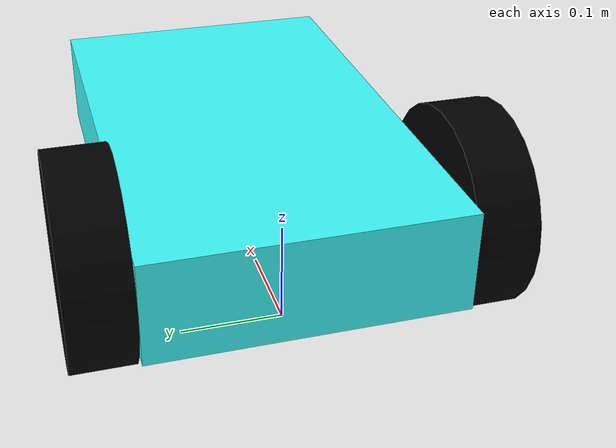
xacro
<?xml version="1.0" ?>

<robot xmlns:xacro="http://www.ros.org/wiki/xacro" name="differential">

<!-- Include -->
<xacro:include filename="$(find my_diff_robot)/urdf/robot_parameters.xacro" />
<xacro:include filename="$(find my_diff_robot)/urdf/my_diff_macros.xacro" />
<!-- END - Include -->

<!-- RViz Material Definition-->

<!-- Chasis -->
<material name="cyan">
  <color rgba="0.25 1.0 1.0 1.0"/>
</material>

<!-- Wheels -->
<material name="black">
  <color rgba="0.0 0.0 0.0 1.0"/>
</material>

<!-- Sphere -->
<material name="grey">
  <color rgba="0.47 0.47 0.47 1.0"/>
</material>

<!-- Gazebo Material Definition-->

<!-- Chasis -->
<gazebo reference="chasis">
  <material>Gazebo/BlueGlow</material>
</gazebo>

<!-- Wheels -->
<gazebo reference="left_wheel">
  <material>Gazebo/FlatBlack</material>
</gazebo>

<gazebo reference="right_wheel">
  <material>Gazebo/FlatBlack</material>
</gazebo>

<!-- Sphere -->
<gazebo reference="sphere_wheel">
  <material>Gazebo/Grey</material>
</gazebo>

<!-- * * * Robot Description * * * -->

<!-- Reference Frame -->
<link name="base_footprint">
</link>

<!-- Footprint to chasis joint -->
<xacro:fixed_joint name="chasis_joint"
origin_xyz="0 0 ${ground_clearance+(base_height/2)}"
origin_rpy="0 0 0"
parent= "base_footprint"
child= "chasis"
/>

<!-- Chasis link -->
<xacro:rectangular_link name="chasis"
origin_xyz= "${(base_length/2)-wheel_radius} 0 0"
origin_rpy= "0 0 0"
length= "${base_length}"
width= "${base_width}"
height= "${base_height}"
material= "cyan"
/>

<!-- Chasis to left wheel joint -->
<xacro:wheel_joint name="left_wheel_joint"
child = "left_wheel"
parent = "chasis"
origin_xyz= "0 ${wheel_distance/2} 0"
origin_rpy= "${-1*pi/2} 0 0"
limit_e = "10"
limit_v = "10"
/>

<!-- Left wheel link -->
<xacro:wheel_link name="left_wheel"
radius= "${wheel_radius}"
width= "${(wheel_distance-base_width)}"
origin_xyz= "0 0 0"
origin_rpy= "0 0 0"
material = "black"
/>

<!-- Chasis to right wheel joint -->
<xacro:wheel_joint name="right_wheel_joint"
child = "right_wheel"
parent = "chasis"
origin_xyz= "0 ${-1*wheel_distance/2} 0"
origin_rpy= "${-1*pi/2} 0 0"
limit_e = "10"
limit_v = "10"
/>

<!-- Right wheel link -->
<xacro:wheel_link name="right_wheel"
radius= "${wheel_radius}"
width= "${(wheel_distance-base_width)}"
origin_xyz= "0 0 0"
origin_rpy= "0 0 0"
material = "black"
/>

<!-- Chasis to sphere wheel -->
<xacro:fixed_joint name="sphere_joint"
origin_xyz="${base_length-(2*wheel_radius)} 0 ${base_height/2}"
origin_rpy="0 0 0"
parent= "base_footprint"
child= "sphere_wheel"
/>

<!-- Sphere wheel link -->
<xacro:sphere_link name="sphere_wheel"
radius= "${ground_clearance}"
origin_xyz= "0 0 0"
origin_rpy= "0 0 0"
material = "grey"
/>

<!-- Transmissions -->

<!-- Left wheel transmission -->
<xacro:wheel_transmission name= "left_wheel_transmission"
joint= "left_wheel_joint"
/>

<!-- Left wheel transmission -->
<xacro:wheel_transmission name= "right_wheel_transmission"
joint= "right_wheel_joint"
/>

<!-- Gazebo Control plugin -->
<gazebo>
  <plugin name="gazebo_ros_control" filename="libgazebo_ros_control.so"/>
</gazebo>

</robot>

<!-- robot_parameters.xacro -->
<robot xmlns:xacro="http://www.ros.org/wiki/xacro" name="differential">

<xacro:property name="wheel_radius" value="0.1"/>
<xacro:property name="wheel_distance" value="0.36"/>
<xacro:property name="base_width" value="0.3"/>
<xacro:property name="base_length" value="0.5"/>
<xacro:property name="base_height" value="0.1"/>
<xacro:property name="ground_clearance" value="${wheel_radius-(base_height/2)}"/>

</robot>

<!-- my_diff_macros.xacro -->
<robot xmlns:xacro="http://www.ros.org/wiki/xacro" name="differential">

<xacro:macro name="fixed_joint" params="name origin_rpy origin_xyz parent child">
    <joint name="${name}" type="fixed">
        <origin rpy="${origin_rpy}" xyz="${origin_xyz}" />
        <parent link="${parent}" />
        <child link="${child}" />
    </joint>
</xacro:macro>

<xacro:macro name="rectangular_link" params="name length width height origin_xyz origin_rpy material">
    <link name="${name}">
        <inertial>
            <origin xyz="0.0 0.0 0.0" rpy="0.0 0.0 0.0"/>
            <mass value="1.0"/>
            <inertia ixx="0.001" ixy="0.0" ixz="0.0" iyy="0.001" iyz="0.0" izz="0.001"/>
        </inertial>
        <visual>
            <origin xyz="${origin_xyz}" rpy="${origin_rpy}"/>
            <geometry>
                <box size="${length} ${width} ${height}"/>
            </geometry>
            <material name="${material}"/>
        </visual>
        <collision>
            <origin xyz="${origin_xyz}" rpy="${origin_rpy}"/>
            <geometry>
                <box size="${length} ${width} ${height}"/>
            </geometry>
        </collision>
    </link>
</xacro:macro>

<xacro:macro name="sphere_link" params="name radius origin_xyz origin_rpy material">
    <link name="${name}">
        <inertial>
            <origin xyz="0.0 0.0 0.0" rpy="0.0 0.0 0.0"/>
            <mass value="1.0"/>
            <inertia ixx="0.001" ixy="0.0" ixz="0.0" iyy="0.001" iyz="0.0" izz="0.001"/>
        </inertial>
        <visual >
            <origin xyz="${origin_xyz}" rpy="${origin_rpy}"/>
            <geometry>
                <sphere radius="${radius}"/>
            </geometry>
            <material name="${material}"/>
        </visual>
        <collision>
            <origin xyz="${origin_xyz}" rpy="${origin_rpy}"/>
            <geometry>
                <sphere radius="${radius}"/>
            </geometry>
        </collision>
    </link>
</xacro:macro>

<xacro:macro name="wheel_link" params="name radius width origin_xyz origin_rpy material">
    <link name="${name}">
        <inertial>
            <origin xyz="0.0 0.0 0.0" rpy="0.0 0.0 0.0"/>
            <mass value="1.0"/>
            <inertia ixx="0.001" ixy="0.0" ixz="0.0" iyy="0.001" iyz="0.0" izz="0.001"/>
        </inertial>
        <visual >
            <origin xyz="${origin_xyz}" rpy="${origin_rpy}"/>
            <geometry>
                <cylinder radius="${radius}" length="${width}"/>
            </geometry>
            <material name="${material}"/>
        </visual>
        <collision>
            <origin xyz="${origin_xyz}" rpy="${origin_rpy}"/>
            <geometry>
                <sphere radius="${radius}"/>
            </geometry>
        </collision>
    </link>
</xacro:macro>

<xacro:macro name="wheel_joint" params="name child parent origin_xyz origin_rpy limit_e limit_v">
    <joint name="${name}" type="continuous">
        <parent link="${parent}"/>
        <child link="${child}"/>
        <axis xyz="0 0 1"/>
        <origin xyz="${origin_xyz}" rpy="${origin_rpy}"/>
        <limit effort="${limit_e}" velocity="${limit_v}"/>
    </joint>
</xacro:macro>

<xacro:macro name="wheel_transmission" params="name joint">
    <transmission name="${name}">
        <type>transmission_interface/SimpleTransmission</type>
        <joint name="${joint}">
            <hardwareInterface>hardware_interface/VelocityJointInterface</hardwareInterface>
        </joint>
        <actuator name="motor_${name}">
            <hardwareInterface>hardware_interface/VelocityJointInterface</hardwareInterface>
            <mechanicalReduction>1</mechanicalReduction>
        </actuator>
    </transmission>
</xacro:macro>

</robot>
